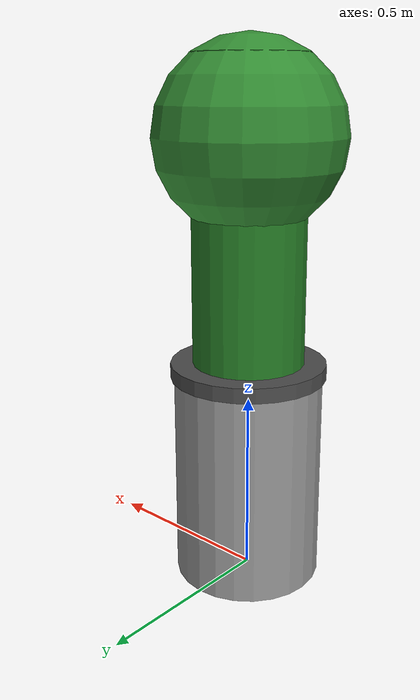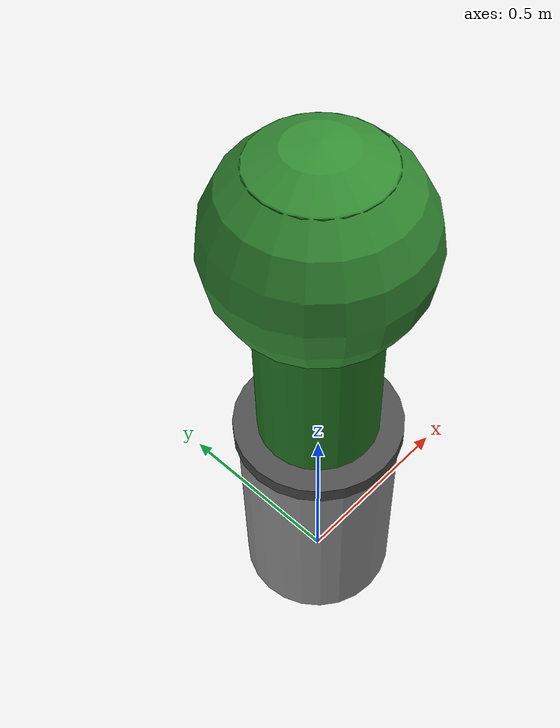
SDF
<?xml version="1.0" ?>
<sdf version="1.6">
  <model name="floor_plant">
    <static>true</static>
    <link name="link">

      <!-- MAIN BOUNDING COLLISION -->
      <collision name="planter_collision">
        <pose>0 0 0.7 0 0 0</pose>
        <geometry>
          <cylinder>
            <radius>0.22</radius>
            <length>1.4</length>
          </cylinder>
        </geometry>
      </collision>

      <!-- VISUAL: CUBIC OR CYLINDRICAL FLOOR PLANTER -->
      <visual name="planter_base_visual">
        <pose>0 0 0.3 0 0 0</pose>
        <geometry>
          <cylinder>
            <radius>0.2</radius>
            <length>0.6</length>
          </cylinder>
        </geometry>
        <material>
          <script>
            <uri>file://media/materials/scripts/gazebo.material</uri>
            <name>Gazebo/Grey</name> <!-- Sleek, modern concrete/stone look -->
          </script>
        </material>
      </visual>

      <!-- VISUAL: PLANTER RIM STYLING -->
      <visual name="planter_rim_visual">
        <pose>0 0 0.59 0 0 0</pose>
        <geometry>
          <cylinder>
            <radius>0.21</radius>
            <length>0.04</length>
          </cylinder>
        </geometry>
        <material>
          <script>
            <uri>file://media/materials/scripts/gazebo.material</uri>
            <name>Gazebo/DarkGrey</name>
          </script>
        </material>
      </visual>

      <!-- VISUAL: PLANTER SOIL -->
      <visual name="soil_visual">
        <pose>0 0 0.58 0 0 0</pose>
        <geometry>
          <cylinder>
            <radius>0.19</radius>
            <length>0.02</length>
          </cylinder>
        </geometry>
        <material>
          <script>
            <uri>file://media/materials/scripts/gazebo.material</uri>
            <name>Gazebo/Dirt</name>
          </script>
        </material>
      </visual>

      <!-- VISUAL: TALL TROPICAL LEAVES (CENTRAL STEM) -->
      <visual name="plant_leaves_main">
        <pose>0 0 1.0 0 0 0</pose>
        <geometry>
          <cylinder>
            <radius>0.15</radius>
            <length>0.8</length>
          </cylinder>
        </geometry>
        <material>
          <ambient>0.1 0.4 0.1 1.0</ambient>
          <diffuse>0.15 0.5 0.15 1.0</diffuse>
        </material>
      </visual>

      <!-- VISUAL: EXPANDING SHRUB TOP -->
      <visual name="plant_leaves_top">
        <pose>0 0 1.2 0 0 0</pose>
        <geometry>
          <sphere>
            <radius>0.25</radius>
          </sphere>
        </geometry>
        <material>
          <ambient>0.1 0.4 0.1 1.0</ambient>
          <diffuse>0.2 0.55 0.2 1.0</diffuse>
        </material>
      </visual>

    </link>
  </model>
</sdf>
